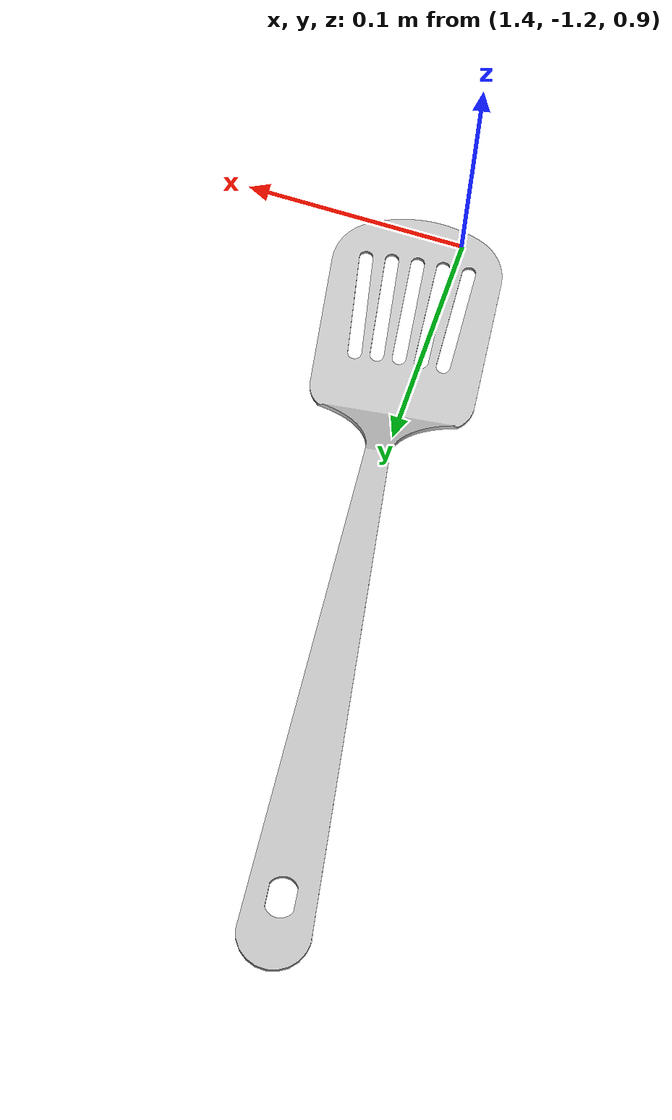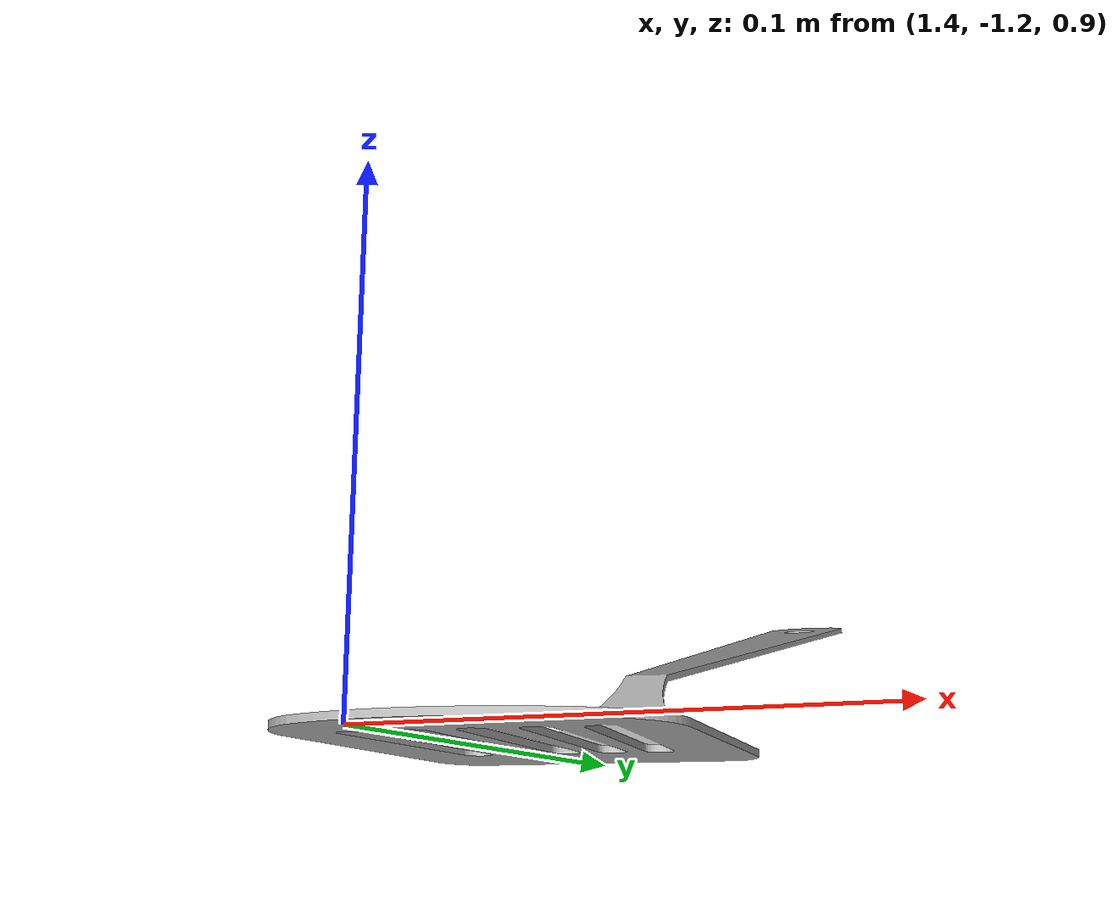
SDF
<?xml version="1.0" ?>
<sdf version="1.4">
  <model name="spatula">
  <pose>2.25 -0.73 .9 0 0 -3</pose>
  <static>false</static>
    <link name="link">
      <inertial>
	<mass>0.4</mass>
	<pose>0.9 0.3 0 0 0 0</pose>
        <inertia>
          <ixx>0.00055575</ixx>
          <ixy>0</ixy>
          <ixz>0</ixz>
          <iyy>0.00055575</iyy>
          <iyz>0</iyz>
          <izz>0.0001755</izz>
	</inertia>
      </inertial>
      <collision name="collision">
        <geometry>
          <mesh>
            <uri>model://spatula/meshes/spatula.dae</uri>
          </mesh>
        </geometry>
        <surface>
          <friction>
            <ode>
              <mu>1.0</mu>
              <mu2>1.0</mu2>
            </ode>
          </friction>
          <contact>
            <ode>
              <kp>10000000.0</kp>
              <kd>1.0</kd>
              <min_depth>0.001</min_depth>
              <max_vel>0.1</max_vel>
            </ode>
          </contact>
        </surface>
      </collision>
      <visual name="visual">
        <geometry>
          <mesh>
            <uri>model://spatula/meshes/spatula.dae</uri>
          </mesh>
        </geometry>
      </visual>
    </link>
  </model>
</sdf>
